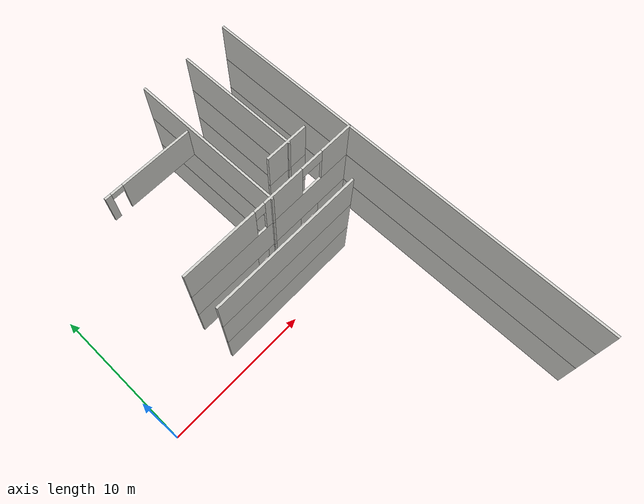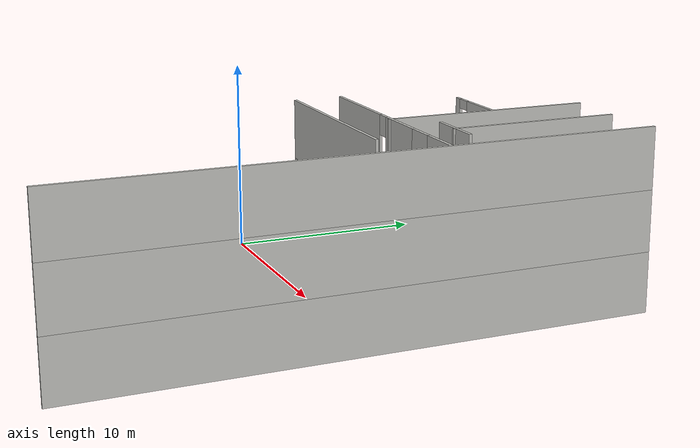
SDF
<sdf version="1.6">
 <model name="add_competition_building">
  <link name="Wall_238">
   <pose>18.3 -0.0635 0 0 0 -1.5708</pose>
   <visual name="Wall_238_Visual">
    <pose>0 0 1.5 0 -0 0</pose>
    <geometry><box><size>28.25 0.15 3</size></box></geometry>
    <material>
     <script><uri>file://media/materials/scripts/gazebo.material</uri><name>Gazebo/CeilingTiled</name></script>
     <ambient>1 1 1 1</ambient>
     <shader type="pixel"/>
    </material>
    <meta><layer>0</layer></meta>
   </visual>
   <collision name="Wall_238_Collision">
    <pose>0 0 1.5 0 -0 0</pose>
    <geometry><box><size>28.25 0.15 3</size></box></geometry>
    <surface>
     <friction>
      <ode><mu>1</mu><mu2>1</mu2><fdir1>0 0 0</fdir1><slip1>0</slip1><slip2>0</slip2></ode>
      <torsional>
       <coefficient>1</coefficient>
       <patch_radius>0</patch_radius>
       <surface_radius>0</surface_radius>
       <use_patch_radius>1</use_patch_radius>
       <ode><slip>0</slip></ode>
      </torsional>
     </friction>
     <bounce><restitution_coefficient>0</restitution_coefficient><threshold>1e+06</threshold></bounce>
     <contact>
      <collide_without_contact>0</collide_without_contact>
      <collide_without_contact_bitmask>1</collide_without_contact_bitmask>
      <collide_bitmask>1</collide_bitmask>
      <ode>
       <soft_cfm>0</soft_cfm>
       <soft_erp>0.2</soft_erp>
       <kp>1e+13</kp>
       <kd>1</kd>
       <max_vel>0.01</max_vel>
       <min_depth>0</min_depth>
      </ode>
      <bullet>
       <split_impulse>1</split_impulse>
       <split_impulse_penetration_threshold>-0.01</split_impulse_penetration_threshold>
       <soft_cfm>0</soft_cfm>
       <soft_erp>0.2</soft_erp>
       <kp>1e+13</kp>
       <kd>1</kd>
      </bullet>
     </contact>
    </surface>
   </collision>
  </link>
  <link name="Wall_262">
   <pose>11.965 3.6935 0 0 -0 0</pose>
   <visual name="Wall_262_Visual_4">
    <pose>3.07679 0 2.5 0 -0 0</pose>
    <geometry><box><size>1.53841 0.15 1</size></box></geometry>
    <material>
     <script><uri>file://media/materials/scripts/gazebo.material</uri><name>Gazebo/CeilingTiled</name></script>
     <ambient>1 1 1 1</ambient>
     <shader type="pixel"/>
    </material>
    <meta><layer>0</layer></meta>
   </visual>
   <visual name="Wall_262_Visual_1">
    <pose>0.882268 0 1.5 0 -0 0</pose>
    <geometry><box><size>2.85063 0.15 3</size></box></geometry>
    <material>
     <script><uri>file://media/materials/scripts/gazebo.material</uri><name>Gazebo/CeilingTiled</name></script>
     <ambient>1 1 1 1</ambient>
     <shader type="pixel"/>
    </material>
    <meta><layer>0</layer></meta>
   </visual>
   <visual name="Wall_262_Visual_3">
    <pose>-0.993046 0 2.5 0 -0 0</pose>
    <geometry><box><size>0.9 0.15 1</size></box></geometry>
    <material>
     <script><uri>file://media/materials/scripts/gazebo.material</uri><name>Gazebo/CeilingTiled</name></script>
     <ambient>1 1 1 1</ambient>
     <shader type="pixel"/>
    </material>
    <meta><layer>0</layer></meta>
   </visual>
   <visual name="Wall_262_Visual_2">
    <pose>5.11049 0 1.5 0 -0 0</pose>
    <geometry><box><size>2.52901 0.15 3</size></box></geometry>
    <material>
     <script><uri>file://media/materials/scripts/gazebo.material</uri><name>Gazebo/CeilingTiled</name></script>
     <ambient>1 1 1 1</ambient>
     <shader type="pixel"/>
    </material>
    <meta><layer>0</layer></meta>
   </visual>
   <visual name="Wall_262_Visual_0">
    <pose>-3.90902 0 1.5 0 -0 0</pose>
    <geometry><box><size>4.93195 0.15 3</size></box></geometry>
    <material>
     <script><uri>file://media/materials/scripts/gazebo.material</uri><name>Gazebo/CeilingTiled</name></script>
     <ambient>1 1 1 1</ambient>
     <shader type="pixel"/>
    </material>
    <meta><layer>0</layer></meta>
   </visual>
   <collision name="Wall_262_Collision_0">
    <pose>-3.90902 0 1.5 0 -0 0</pose>
    <geometry><box><size>4.93195 0.15 3</size></box></geometry>
    <surface>
     <friction>
      <ode><mu>1</mu><mu2>1</mu2><fdir1>0 0 0</fdir1><slip1>0</slip1><slip2>0</slip2></ode>
      <torsional>
       <coefficient>1</coefficient>
       <patch_radius>0</patch_radius>
       <surface_radius>0</surface_radius>
       <use_patch_radius>1</use_patch_radius>
       <ode><slip>0</slip></ode>
      </torsional>
     </friction>
     <bounce><restitution_coefficient>0</restitution_coefficient><threshold>1e+06</threshold></bounce>
     <contact>
      <collide_without_contact>0</collide_without_contact>
      <collide_without_contact_bitmask>1</collide_without_contact_bitmask>
      <collide_bitmask>1</collide_bitmask>
      <ode>
       <soft_cfm>0</soft_cfm>
       <soft_erp>0.2</soft_erp>
       <kp>1e+13</kp>
       <kd>1</kd>
       <max_vel>0.01</max_vel>
       <min_depth>0</min_depth>
      </ode>
      <bullet>
       <split_impulse>1</split_impulse>
       <split_impulse_penetration_threshold>-0.01</split_impulse_penetration_threshold>
       <soft_cfm>0</soft_cfm>
       <soft_erp>0.2</soft_erp>
       <kp>1e+13</kp>
       <kd>1</kd>
      </bullet>
     </contact>
    </surface>
   </collision>
   <collision name="Wall_262_Collision_2">
    <pose>5.11049 0 1.5 0 -0 0</pose>
    <geometry><box><size>2.52901 0.15 3</size></box></geometry>
    <surface>
     <friction>
      <ode><mu>1</mu><mu2>1</mu2><fdir1>0 0 0</fdir1><slip1>0</slip1><slip2>0</slip2></ode>
      <torsional>
       <coefficient>1</coefficient>
       <patch_radius>0</patch_radius>
       <surface_radius>0</surface_radius>
       <use_patch_radius>1</use_patch_radius>
       <ode><slip>0</slip></ode>
      </torsional>
     </friction>
     <bounce><restitution_coefficient>0</restitution_coefficient><threshold>1e+06</threshold></bounce>
     <contact>
      <collide_without_contact>0</collide_without_contact>
      <collide_without_contact_bitmask>1</collide_without_contact_bitmask>
      <collide_bitmask>1</collide_bitmask>
      <ode>
       <soft_cfm>0</soft_cfm>
       <soft_erp>0.2</soft_erp>
       <kp>1e+13</kp>
       <kd>1</kd>
       <max_vel>0.01</max_vel>
       <min_depth>0</min_depth>
      </ode>
      <bullet>
       <split_impulse>1</split_impulse>
       <split_impulse_penetration_threshold>-0.01</split_impulse_penetration_threshold>
       <soft_cfm>0</soft_cfm>
       <soft_erp>0.2</soft_erp>
       <kp>1e+13</kp>
       <kd>1</kd>
      </bullet>
     </contact>
    </surface>
   </collision>
   <collision name="Wall_262_Collision_4">
    <pose>3.07679 0 2.5 0 -0 0</pose>
    <geometry><box><size>1.53841 0.15 1</size></box></geometry>
    <surface>
     <friction>
      <ode><mu>1</mu><mu2>1</mu2><fdir1>0 0 0</fdir1><slip1>0</slip1><slip2>0</slip2></ode>
      <torsional>
       <coefficient>1</coefficient>
       <patch_radius>0</patch_radius>
       <surface_radius>0</surface_radius>
       <use_patch_radius>1</use_patch_radius>
       <ode><slip>0</slip></ode>
      </torsional>
     </friction>
     <bounce><restitution_coefficient>0</restitution_coefficient><threshold>1e+06</threshold></bounce>
     <contact>
      <collide_without_contact>0</collide_without_contact>
      <collide_without_contact_bitmask>1</collide_without_contact_bitmask>
      <collide_bitmask>1</collide_bitmask>
      <ode>
       <soft_cfm>0</soft_cfm>
       <soft_erp>0.2</soft_erp>
       <kp>1e+13</kp>
       <kd>1</kd>
       <max_vel>0.01</max_vel>
       <min_depth>0</min_depth>
      </ode>
      <bullet>
       <split_impulse>1</split_impulse>
       <split_impulse_penetration_threshold>-0.01</split_impulse_penetration_threshold>
       <soft_cfm>0</soft_cfm>
       <soft_erp>0.2</soft_erp>
       <kp>1e+13</kp>
       <kd>1</kd>
      </bullet>
     </contact>
    </surface>
   </collision>
   <collision name="Wall_262_Collision_3">
    <pose>-0.993046 0 2.5 0 -0 0</pose>
    <geometry><box><size>0.9 0.15 1</size></box></geometry>
    <surface>
     <friction>
      <ode><mu>1</mu><mu2>1</mu2><fdir1>0 0 0</fdir1><slip1>0</slip1><slip2>0</slip2></ode>
      <torsional>
       <coefficient>1</coefficient>
       <patch_radius>0</patch_radius>
       <surface_radius>0</surface_radius>
       <use_patch_radius>1</use_patch_radius>
       <ode><slip>0</slip></ode>
      </torsional>
     </friction>
     <bounce><restitution_coefficient>0</restitution_coefficient><threshold>1e+06</threshold></bounce>
     <contact>
      <collide_without_contact>0</collide_without_contact>
      <collide_without_contact_bitmask>1</collide_without_contact_bitmask>
      <collide_bitmask>1</collide_bitmask>
      <ode>
       <soft_cfm>0</soft_cfm>
       <soft_erp>0.2</soft_erp>
       <kp>1e+13</kp>
       <kd>1</kd>
       <max_vel>0.01</max_vel>
       <min_depth>0</min_depth>
      </ode>
      <bullet>
       <split_impulse>1</split_impulse>
       <split_impulse_penetration_threshold>-0.01</split_impulse_penetration_threshold>
       <soft_cfm>0</soft_cfm>
       <soft_erp>0.2</soft_erp>
       <kp>1e+13</kp>
       <kd>1</kd>
      </bullet>
     </contact>
    </surface>
   </collision>
   <collision name="Wall_262_Collision_1">
    <pose>0.882268 0 1.5 0 -0 0</pose>
    <geometry><box><size>2.85063 0.15 3</size></box></geometry>
    <surface>
     <friction>
      <ode><mu>1</mu><mu2>1</mu2><fdir1>0 0 0</fdir1><slip1>0</slip1><slip2>0</slip2></ode>
      <torsional>
       <coefficient>1</coefficient>
       <patch_radius>0</patch_radius>
       <surface_radius>0</surface_radius>
       <use_patch_radius>1</use_patch_radius>
       <ode><slip>0</slip></ode>
      </torsional>
     </friction>
     <bounce><restitution_coefficient>0</restitution_coefficient><threshold>1e+06</threshold></bounce>
     <contact>
      <collide_without_contact>0</collide_without_contact>
      <collide_without_contact_bitmask>1</collide_without_contact_bitmask>
      <collide_bitmask>1</collide_bitmask>
      <ode>
       <soft_cfm>0</soft_cfm>
       <soft_erp>0.2</soft_erp>
       <kp>1e+13</kp>
       <kd>1</kd>
       <max_vel>0.01</max_vel>
       <min_depth>0</min_depth>
      </ode>
      <bullet>
       <split_impulse>1</split_impulse>
       <split_impulse_penetration_threshold>-0.01</split_impulse_penetration_threshold>
       <soft_cfm>0</soft_cfm>
       <soft_erp>0.2</soft_erp>
       <kp>1e+13</kp>
       <kd>1</kd>
      </bullet>
     </contact>
    </surface>
   </collision>
  </link>
  <link name="Wall_264">
   <pose>10.75 1.2365 0 0 -0 0</pose>
   <visual name="Wall_264_Visual">
    <pose>0 0 1.5 0 -0 0</pose>
    <geometry><box><size>10.25 0.15 3</size></box></geometry>
    <material>
     <script><uri>file://media/materials/scripts/gazebo.material</uri><name>Gazebo/CeilingTiled</name></script>
     <ambient>1 1 1 1</ambient>
     <shader type="pixel"/>
    </material>
    <meta><layer>0</layer></meta>
   </visual>
   <collision name="Wall_264_Collision">
    <pose>0 0 1.5 0 -0 0</pose>
    <geometry><box><size>10.25 0.15 3</size></box></geometry>
    <surface>
     <friction>
      <ode><mu>1</mu><mu2>1</mu2><fdir1>0 0 0</fdir1><slip1>0</slip1><slip2>0</slip2></ode>
      <torsional>
       <coefficient>1</coefficient>
       <patch_radius>0</patch_radius>
       <surface_radius>0</surface_radius>
       <use_patch_radius>1</use_patch_radius>
       <ode><slip>0</slip></ode>
      </torsional>
     </friction>
     <bounce><restitution_coefficient>0</restitution_coefficient><threshold>1e+06</threshold></bounce>
     <contact>
      <collide_without_contact>0</collide_without_contact>
      <collide_without_contact_bitmask>1</collide_without_contact_bitmask>
      <collide_bitmask>1</collide_bitmask>
      <ode>
       <soft_cfm>0</soft_cfm>
       <soft_erp>0.2</soft_erp>
       <kp>1e+13</kp>
       <kd>1</kd>
       <max_vel>0.01</max_vel>
       <min_depth>0</min_depth>
      </ode>
      <bullet>
       <split_impulse>1</split_impulse>
       <split_impulse_penetration_threshold>-0.01</split_impulse_penetration_threshold>
       <soft_cfm>0</soft_cfm>
       <soft_erp>0.2</soft_erp>
       <kp>1e+13</kp>
       <kd>1</kd>
      </bullet>
     </contact>
    </surface>
   </collision>
  </link>
  <link name="Wall_269">
   <pose>11.969 8.7785 0 0 0 -1.5708</pose>
   <visual name="Wall_269_Visual">
    <pose>0 0 1.5 0 -0 0</pose>
    <geometry><box><size>10.5 0.15 3</size></box></geometry>
    <material>
     <script><uri>file://media/materials/scripts/gazebo.material</uri><name>Gazebo/CeilingTiled</name></script>
     <ambient>1 1 1 1</ambient>
     <shader type="pixel"/>
    </material>
    <meta><layer>0</layer></meta>
   </visual>
   <collision name="Wall_269_Collision">
    <pose>0 0 1.5 0 -0 0</pose>
    <geometry><box><size>10.5 0.15 3</size></box></geometry>
    <surface>
     <friction>
      <ode><mu>1</mu><mu2>1</mu2><fdir1>0 0 0</fdir1><slip1>0</slip1><slip2>0</slip2></ode>
      <torsional>
       <coefficient>1</coefficient>
       <patch_radius>0</patch_radius>
       <surface_radius>0</surface_radius>
       <use_patch_radius>1</use_patch_radius>
       <ode><slip>0</slip></ode>
      </torsional>
     </friction>
     <bounce><restitution_coefficient>0</restitution_coefficient><threshold>1e+06</threshold></bounce>
     <contact>
      <collide_without_contact>0</collide_without_contact>
      <collide_without_contact_bitmask>1</collide_without_contact_bitmask>
      <collide_bitmask>1</collide_bitmask>
      <ode>
       <soft_cfm>0</soft_cfm>
       <soft_erp>0.2</soft_erp>
       <kp>1e+13</kp>
       <kd>1</kd>
       <max_vel>0.01</max_vel>
       <min_depth>0</min_depth>
      </ode>
      <bullet>
       <split_impulse>1</split_impulse>
       <split_impulse_penetration_threshold>-0.01</split_impulse_penetration_threshold>
       <soft_cfm>0</soft_cfm>
       <soft_erp>0.2</soft_erp>
       <kp>1e+13</kp>
       <kd>1</kd>
      </bullet>
     </contact>
    </surface>
   </collision>
  </link>
  <link name="Wall_271">
   <pose>15.03 5.4945 0 0 -0 0</pose>
   <visual name="Wall_271_Visual">
    <pose>0 0 1.5 0 -0 0</pose>
    <geometry><box><size>3 0.15 3</size></box></geometry>
    <material>
     <script><uri>file://media/materials/scripts/gazebo.material</uri><name>Gazebo/CeilingTiled</name></script>
     <ambient>1 1 1 1</ambient>
     <shader type="pixel"/>
    </material>
    <meta><layer>0</layer></meta>
   </visual>
   <collision name="Wall_271_Collision">
    <pose>0 0 1.5 0 -0 0</pose>
    <geometry><box><size>3 0.15 3</size></box></geometry>
    <surface>
     <friction>
      <ode><mu>1</mu><mu2>1</mu2><fdir1>0 0 0</fdir1><slip1>0</slip1><slip2>0</slip2></ode>
      <torsional>
       <coefficient>1</coefficient>
       <patch_radius>0</patch_radius>
       <surface_radius>0</surface_radius>
       <use_patch_radius>1</use_patch_radius>
       <ode><slip>0</slip></ode>
      </torsional>
     </friction>
     <bounce><restitution_coefficient>0</restitution_coefficient><threshold>1e+06</threshold></bounce>
     <contact>
      <collide_without_contact>0</collide_without_contact>
      <collide_without_contact_bitmask>1</collide_without_contact_bitmask>
      <collide_bitmask>1</collide_bitmask>
      <ode>
       <soft_cfm>0</soft_cfm>
       <soft_erp>0.2</soft_erp>
       <kp>1e+13</kp>
       <kd>1</kd>
       <max_vel>0.01</max_vel>
       <min_depth>0</min_depth>
      </ode>
      <bullet>
       <split_impulse>1</split_impulse>
       <split_impulse_penetration_threshold>-0.01</split_impulse_penetration_threshold>
       <soft_cfm>0</soft_cfm>
       <soft_erp>0.2</soft_erp>
       <kp>1e+13</kp>
       <kd>1</kd>
      </bullet>
     </contact>
    </surface>
   </collision>
  </link>
  <link name="Wall_273">
   <pose>15.122 9.5895 0 0 -0 1.5708</pose>
   <visual name="Wall_273_Visual">
    <pose>0 0 1.5 0 -0 0</pose>
    <geometry><box><size>8.5 0.15 3</size></box></geometry>
    <material>
     <script><uri>file://media/materials/scripts/gazebo.material</uri><name>Gazebo/CeilingTiled</name></script>
     <ambient>1 1 1 1</ambient>
     <shader type="pixel"/>
    </material>
    <meta><layer>0</layer></meta>
   </visual>
   <collision name="Wall_273_Collision">
    <pose>0 0 1.5 0 -0 0</pose>
    <geometry><box><size>8.5 0.15 3</size></box></geometry>
    <surface>
     <friction>
      <ode><mu>1</mu><mu2>1</mu2><fdir1>0 0 0</fdir1><slip1>0</slip1><slip2>0</slip2></ode>
      <torsional>
       <coefficient>1</coefficient>
       <patch_radius>0</patch_radius>
       <surface_radius>0</surface_radius>
       <use_patch_radius>1</use_patch_radius>
       <ode><slip>0</slip></ode>
      </torsional>
     </friction>
     <bounce><restitution_coefficient>0</restitution_coefficient><threshold>1e+06</threshold></bounce>
     <contact>
      <collide_without_contact>0</collide_without_contact>
      <collide_without_contact_bitmask>1</collide_without_contact_bitmask>
      <collide_bitmask>1</collide_bitmask>
      <ode>
       <soft_cfm>0</soft_cfm>
       <soft_erp>0.2</soft_erp>
       <kp>1e+13</kp>
       <kd>1</kd>
       <max_vel>0.01</max_vel>
       <min_depth>0</min_depth>
      </ode>
      <bullet>
       <split_impulse>1</split_impulse>
       <split_impulse_penetration_threshold>-0.01</split_impulse_penetration_threshold>
       <soft_cfm>0</soft_cfm>
       <soft_erp>0.2</soft_erp>
       <kp>1e+13</kp>
       <kd>1</kd>
      </bullet>
     </contact>
    </surface>
   </collision>
  </link>
  <link name="Wall_278">
   <pose>18.3 -0.0635 3 0 0 -1.5708</pose>
   <visual name="Wall_278_Visual">
    <pose>0 0 1.5 0 -0 0</pose>
    <geometry><box><size>28.25 0.15 3</size></box></geometry>
    <material>
     <script><uri>file://media/materials/scripts/gazebo.material</uri><name>Gazebo/CeilingTiled</name></script>
     <ambient>1 1 1 1</ambient>
     <shader type="pixel"/>
    </material>
    <meta><layer>1</layer></meta>
   </visual>
   <collision name="Wall_278_Collision">
    <pose>0 0 1.5 0 -0 0</pose>
    <geometry><box><size>28.25 0.15 3</size></box></geometry>
    <surface>
     <friction>
      <ode><mu>1</mu><mu2>1</mu2><fdir1>0 0 0</fdir1><slip1>0</slip1><slip2>0</slip2></ode>
      <torsional>
       <coefficient>1</coefficient>
       <patch_radius>0</patch_radius>
       <surface_radius>0</surface_radius>
       <use_patch_radius>1</use_patch_radius>
       <ode><slip>0</slip></ode>
      </torsional>
     </friction>
     <bounce><restitution_coefficient>0</restitution_coefficient><threshold>1e+06</threshold></bounce>
     <contact>
      <collide_without_contact>0</collide_without_contact>
      <collide_without_contact_bitmask>1</collide_without_contact_bitmask>
      <collide_bitmask>1</collide_bitmask>
      <ode>
       <soft_cfm>0</soft_cfm>
       <soft_erp>0.2</soft_erp>
       <kp>1e+13</kp>
       <kd>1</kd>
       <max_vel>0.01</max_vel>
       <min_depth>0</min_depth>
      </ode>
      <bullet>
       <split_impulse>1</split_impulse>
       <split_impulse_penetration_threshold>-0.01</split_impulse_penetration_threshold>
       <soft_cfm>0</soft_cfm>
       <soft_erp>0.2</soft_erp>
       <kp>1e+13</kp>
       <kd>1</kd>
      </bullet>
     </contact>
    </surface>
   </collision>
  </link>
  <link name="Wall_294">
   <pose>11.965 3.6935 3 0 -0 0</pose>
   <visual name="Wall_294_Visual">
    <pose>0 0 1.5 0 -0 0</pose>
    <geometry><box><size>12.75 0.15 3</size></box></geometry>
    <material>
     <script><uri>file://media/materials/scripts/gazebo.material</uri><name>Gazebo/CeilingTiled</name></script>
     <ambient>1 1 1 1</ambient>
     <shader type="pixel"/>
    </material>
    <meta><layer>1</layer></meta>
   </visual>
   <collision name="Wall_294_Collision">
    <pose>0 0 1.5 0 -0 0</pose>
    <geometry><box><size>12.75 0.15 3</size></box></geometry>
    <surface>
     <friction>
      <ode><mu>1</mu><mu2>1</mu2><fdir1>0 0 0</fdir1><slip1>0</slip1><slip2>0</slip2></ode>
      <torsional>
       <coefficient>1</coefficient>
       <patch_radius>0</patch_radius>
       <surface_radius>0</surface_radius>
       <use_patch_radius>1</use_patch_radius>
       <ode><slip>0</slip></ode>
      </torsional>
     </friction>
     <bounce><restitution_coefficient>0</restitution_coefficient><threshold>1e+06</threshold></bounce>
     <contact>
      <collide_without_contact>0</collide_without_contact>
      <collide_without_contact_bitmask>1</collide_without_contact_bitmask>
      <collide_bitmask>1</collide_bitmask>
      <ode>
       <soft_cfm>0</soft_cfm>
       <soft_erp>0.2</soft_erp>
       <kp>1e+13</kp>
       <kd>1</kd>
       <max_vel>0.01</max_vel>
       <min_depth>0</min_depth>
      </ode>
      <bullet>
       <split_impulse>1</split_impulse>
       <split_impulse_penetration_threshold>-0.01</split_impulse_penetration_threshold>
       <soft_cfm>0</soft_cfm>
       <soft_erp>0.2</soft_erp>
       <kp>1e+13</kp>
       <kd>1</kd>
      </bullet>
     </contact>
    </surface>
   </collision>
  </link>
  <link name="Wall_295">
   <pose>10.75 1.2365 3 0 -0 0</pose>
   <visual name="Wall_295_Visual">
    <pose>0 0 1.5 0 -0 0</pose>
    <geometry><box><size>10.25 0.15 3</size></box></geometry>
    <material>
     <script><uri>file://media/materials/scripts/gazebo.material</uri><name>Gazebo/CeilingTiled</name></script>
     <ambient>1 1 1 1</ambient>
     <shader type="pixel"/>
    </material>
    <meta><layer>1</layer></meta>
   </visual>
   <collision name="Wall_295_Collision">
    <pose>0 0 1.5 0 -0 0</pose>
    <geometry><box><size>10.25 0.15 3</size></box></geometry>
    <surface>
     <friction>
      <ode><mu>1</mu><mu2>1</mu2><fdir1>0 0 0</fdir1><slip1>0</slip1><slip2>0</slip2></ode>
      <torsional>
       <coefficient>1</coefficient>
       <patch_radius>0</patch_radius>
       <surface_radius>0</surface_radius>
       <use_patch_radius>1</use_patch_radius>
       <ode><slip>0</slip></ode>
      </torsional>
     </friction>
     <bounce><restitution_coefficient>0</restitution_coefficient><threshold>1e+06</threshold></bounce>
     <contact>
      <collide_without_contact>0</collide_without_contact>
      <collide_without_contact_bitmask>1</collide_without_contact_bitmask>
      <collide_bitmask>1</collide_bitmask>
      <ode>
       <soft_cfm>0</soft_cfm>
       <soft_erp>0.2</soft_erp>
       <kp>1e+13</kp>
       <kd>1</kd>
       <max_vel>0.01</max_vel>
       <min_depth>0</min_depth>
      </ode>
      <bullet>
       <split_impulse>1</split_impulse>
       <split_impulse_penetration_threshold>-0.01</split_impulse_penetration_threshold>
       <soft_cfm>0</soft_cfm>
       <soft_erp>0.2</soft_erp>
       <kp>1e+13</kp>
       <kd>1</kd>
      </bullet>
     </contact>
    </surface>
   </collision>
  </link>
  <link name="Wall_298">
   <pose>11.969 8.7785 3 0 0 -1.5708</pose>
   <visual name="Wall_298_Visual">
    <pose>0 0 1.5 0 -0 0</pose>
    <geometry><box><size>10.5 0.15 3</size></box></geometry>
    <material>
     <script><uri>file://media/materials/scripts/gazebo.material</uri><name>Gazebo/CeilingTiled</name></script>
     <ambient>1 1 1 1</ambient>
     <shader type="pixel"/>
    </material>
    <meta><layer>1</layer></meta>
   </visual>
   <collision name="Wall_298_Collision">
    <pose>0 0 1.5 0 -0 0</pose>
    <geometry><box><size>10.5 0.15 3</size></box></geometry>
    <surface>
     <friction>
      <ode><mu>1</mu><mu2>1</mu2><fdir1>0 0 0</fdir1><slip1>0</slip1><slip2>0</slip2></ode>
      <torsional>
       <coefficient>1</coefficient>
       <patch_radius>0</patch_radius>
       <surface_radius>0</surface_radius>
       <use_patch_radius>1</use_patch_radius>
       <ode><slip>0</slip></ode>
      </torsional>
     </friction>
     <bounce><restitution_coefficient>0</restitution_coefficient><threshold>1e+06</threshold></bounce>
     <contact>
      <collide_without_contact>0</collide_without_contact>
      <collide_without_contact_bitmask>1</collide_without_contact_bitmask>
      <collide_bitmask>1</collide_bitmask>
      <ode>
       <soft_cfm>0</soft_cfm>
       <soft_erp>0.2</soft_erp>
       <kp>1e+13</kp>
       <kd>1</kd>
       <max_vel>0.01</max_vel>
       <min_depth>0</min_depth>
      </ode>
      <bullet>
       <split_impulse>1</split_impulse>
       <split_impulse_penetration_threshold>-0.01</split_impulse_penetration_threshold>
       <soft_cfm>0</soft_cfm>
       <soft_erp>0.2</soft_erp>
       <kp>1e+13</kp>
       <kd>1</kd>
      </bullet>
     </contact>
    </surface>
   </collision>
  </link>
  <link name="Wall_299">
   <pose>15.03 5.4945 3 0 -0 0</pose>
   <visual name="Wall_299_Visual">
    <pose>0 0 1.5 0 -0 0</pose>
    <geometry><box><size>3 0.15 3</size></box></geometry>
    <material>
     <script><uri>file://media/materials/scripts/gazebo.material</uri><name>Gazebo/CeilingTiled</name></script>
     <ambient>1 1 1 1</ambient>
     <shader type="pixel"/>
    </material>
    <meta><layer>1</layer></meta>
   </visual>
   <collision name="Wall_299_Collision">
    <pose>0 0 1.5 0 -0 0</pose>
    <geometry><box><size>3 0.15 3</size></box></geometry>
    <surface>
     <friction>
      <ode><mu>1</mu><mu2>1</mu2><fdir1>0 0 0</fdir1><slip1>0</slip1><slip2>0</slip2></ode>
      <torsional>
       <coefficient>1</coefficient>
       <patch_radius>0</patch_radius>
       <surface_radius>0</surface_radius>
       <use_patch_radius>1</use_patch_radius>
       <ode><slip>0</slip></ode>
      </torsional>
     </friction>
     <bounce><restitution_coefficient>0</restitution_coefficient><threshold>1e+06</threshold></bounce>
     <contact>
      <collide_without_contact>0</collide_without_contact>
      <collide_without_contact_bitmask>1</collide_without_contact_bitmask>
      <collide_bitmask>1</collide_bitmask>
      <ode>
       <soft_cfm>0</soft_cfm>
       <soft_erp>0.2</soft_erp>
       <kp>1e+13</kp>
       <kd>1</kd>
       <max_vel>0.01</max_vel>
       <min_depth>0</min_depth>
      </ode>
      <bullet>
       <split_impulse>1</split_impulse>
       <split_impulse_penetration_threshold>-0.01</split_impulse_penetration_threshold>
       <soft_cfm>0</soft_cfm>
       <soft_erp>0.2</soft_erp>
       <kp>1e+13</kp>
       <kd>1</kd>
      </bullet>
     </contact>
    </surface>
   </collision>
  </link>
  <link name="Wall_300">
   <pose>15.122 9.5895 3 0 -0 1.5708</pose>
   <visual name="Wall_300_Visual">
    <pose>0 0 1.5 0 -0 0</pose>
    <geometry><box><size>8.5 0.15 3</size></box></geometry>
    <material>
     <script><uri>file://media/materials/scripts/gazebo.material</uri><name>Gazebo/CeilingTiled</name></script>
     <ambient>1 1 1 1</ambient>
     <shader type="pixel"/>
    </material>
    <meta><layer>1</layer></meta>
   </visual>
   <collision name="Wall_300_Collision">
    <pose>0 0 1.5 0 -0 0</pose>
    <geometry><box><size>8.5 0.15 3</size></box></geometry>
    <surface>
     <friction>
      <ode><mu>1</mu><mu2>1</mu2><fdir1>0 0 0</fdir1><slip1>0</slip1><slip2>0</slip2></ode>
      <torsional>
       <coefficient>1</coefficient>
       <patch_radius>0</patch_radius>
       <surface_radius>0</surface_radius>
       <use_patch_radius>1</use_patch_radius>
       <ode><slip>0</slip></ode>
      </torsional>
     </friction>
     <bounce><restitution_coefficient>0</restitution_coefficient><threshold>1e+06</threshold></bounce>
     <contact>
      <collide_without_contact>0</collide_without_contact>
      <collide_without_contact_bitmask>1</collide_without_contact_bitmask>
      <collide_bitmask>1</collide_bitmask>
      <ode>
       <soft_cfm>0</soft_cfm>
       <soft_erp>0.2</soft_erp>
       <kp>1e+13</kp>
       <kd>1</kd>
       <max_vel>0.01</max_vel>
       <min_depth>0</min_depth>
      </ode>
      <bullet>
       <split_impulse>1</split_impulse>
       <split_impulse_penetration_threshold>-0.01</split_impulse_penetration_threshold>
       <soft_cfm>0</soft_cfm>
       <soft_erp>0.2</soft_erp>
       <kp>1e+13</kp>
       <kd>1</kd>
      </bullet>
     </contact>
    </surface>
   </collision>
  </link>
  <link name="Wall_333">
   <pose>18.3 -0.0635 6 0 0 -1.5708</pose>
   <visual name="Wall_333_Visual">
    <pose>0 0 1.5 0 -0 0</pose>
    <geometry><box><size>28.25 0.15 3</size></box></geometry>
    <material>
     <script><uri>file://media/materials/scripts/gazebo.material</uri><name>Gazebo/CeilingTiled</name></script>
     <ambient>1 1 1 1</ambient>
     <shader type="pixel"/>
    </material>
    <meta><layer>2</layer></meta>
   </visual>
   <collision name="Wall_333_Collision">
    <pose>0 0 1.5 0 -0 0</pose>
    <geometry><box><size>28.25 0.15 3</size></box></geometry>
    <surface>
     <friction>
      <ode><mu>1</mu><mu2>1</mu2><fdir1>0 0 0</fdir1><slip1>0</slip1><slip2>0</slip2></ode>
      <torsional>
       <coefficient>1</coefficient>
       <patch_radius>0</patch_radius>
       <surface_radius>0</surface_radius>
       <use_patch_radius>1</use_patch_radius>
       <ode><slip>0</slip></ode>
      </torsional>
     </friction>
     <bounce><restitution_coefficient>0</restitution_coefficient><threshold>1e+06</threshold></bounce>
     <contact>
      <collide_without_contact>0</collide_without_contact>
      <collide_without_contact_bitmask>1</collide_without_contact_bitmask>
      <collide_bitmask>1</collide_bitmask>
      <ode>
       <soft_cfm>0</soft_cfm>
       <soft_erp>0.2</soft_erp>
       <kp>1e+13</kp>
       <kd>1</kd>
       <max_vel>0.01</max_vel>
       <min_depth>0</min_depth>
      </ode>
      <bullet>
       <split_impulse>1</split_impulse>
       <split_impulse_penetration_threshold>-0.01</split_impulse_penetration_threshold>
       <soft_cfm>0</soft_cfm>
       <soft_erp>0.2</soft_erp>
       <kp>1e+13</kp>
       <kd>1</kd>
      </bullet>
     </contact>
    </surface>
   </collision>
  </link>
  <link name="Wall_349">
   <pose>11.965 3.6935 6 0 -0 0</pose>
   <visual name="Wall_349_Visual_2">
    <pose>5.19738 0 1.5 0 -0 0</pose>
    <geometry><box><size>2.35524 0.15 3</size></box></geometry>
    <material>
     <script><uri>file://media/materials/scripts/gazebo.material</uri><name>Gazebo/CeilingTiled</name></script>
     <ambient>1 1 1 1</ambient>
     <shader type="pixel"/>
    </material>
    <meta><layer>2</layer></meta>
   </visual>
   <visual name="Wall_349_Visual_4">
    <pose>3.22281 0 2.5 0 -0 0</pose>
    <geometry><box><size>1.59392 0.15 1</size></box></geometry>
    <material>
     <script><uri>file://media/materials/scripts/gazebo.material</uri><name>Gazebo/CeilingTiled</name></script>
     <ambient>1 1 1 1</ambient>
     <shader type="pixel"/>
    </material>
    <meta><layer>2</layer></meta>
   </visual>
   <visual name="Wall_349_Visual_1">
    <pose>0.962302 0 1.5 0 -0 0</pose>
    <geometry><box><size>2.92709 0.15 3</size></box></geometry>
    <material>
     <script><uri>file://media/materials/scripts/gazebo.material</uri><name>Gazebo/CeilingTiled</name></script>
     <ambient>1 1 1 1</ambient>
     <shader type="pixel"/>
    </material>
    <meta><layer>2</layer></meta>
   </visual>
   <visual name="Wall_349_Visual_0">
    <pose>-3.80312 0 1.5 0 -0 0</pose>
    <geometry><box><size>5.14376 0.15 3</size></box></geometry>
    <material>
     <script><uri>file://media/materials/scripts/gazebo.material</uri><name>Gazebo/CeilingTiled</name></script>
     <ambient>1 1 1 1</ambient>
     <shader type="pixel"/>
    </material>
    <meta><layer>2</layer></meta>
   </visual>
   <visual name="Wall_349_Visual_3">
    <pose>-0.866241 0 2.5 0 -0 0</pose>
    <geometry><box><size>0.73 0.15 1</size></box></geometry>
    <material>
     <script><uri>file://media/materials/scripts/gazebo.material</uri><name>Gazebo/CeilingTiled</name></script>
     <ambient>1 1 1 1</ambient>
     <shader type="pixel"/>
    </material>
    <meta><layer>2</layer></meta>
   </visual>
   <collision name="Wall_349_Collision_1">
    <pose>0.962302 0 1.5 0 -0 0</pose>
    <geometry><box><size>2.92709 0.15 3</size></box></geometry>
    <surface>
     <friction>
      <ode><mu>1</mu><mu2>1</mu2><fdir1>0 0 0</fdir1><slip1>0</slip1><slip2>0</slip2></ode>
      <torsional>
       <coefficient>1</coefficient>
       <patch_radius>0</patch_radius>
       <surface_radius>0</surface_radius>
       <use_patch_radius>1</use_patch_radius>
       <ode><slip>0</slip></ode>
      </torsional>
     </friction>
     <bounce><restitution_coefficient>0</restitution_coefficient><threshold>1e+06</threshold></bounce>
     <contact>
      <collide_without_contact>0</collide_without_contact>
      <collide_without_contact_bitmask>1</collide_without_contact_bitmask>
      <collide_bitmask>1</collide_bitmask>
      <ode>
       <soft_cfm>0</soft_cfm>
       <soft_erp>0.2</soft_erp>
       <kp>1e+13</kp>
       <kd>1</kd>
       <max_vel>0.01</max_vel>
       <min_depth>0</min_depth>
      </ode>
      <bullet>
       <split_impulse>1</split_impulse>
       <split_impulse_penetration_threshold>-0.01</split_impulse_penetration_threshold>
       <soft_cfm>0</soft_cfm>
       <soft_erp>0.2</soft_erp>
       <kp>1e+13</kp>
       <kd>1</kd>
      </bullet>
     </contact>
    </surface>
   </collision>
   <collision name="Wall_349_Collision_3">
    <pose>-0.866241 0 2.5 0 -0 0</pose>
    <geometry><box><size>0.73 0.15 1</size></box></geometry>
    <surface>
     <friction>
      <ode><mu>1</mu><mu2>1</mu2><fdir1>0 0 0</fdir1><slip1>0</slip1><slip2>0</slip2></ode>
      <torsional>
       <coefficient>1</coefficient>
       <patch_radius>0</patch_radius>
       <surface_radius>0</surface_radius>
       <use_patch_radius>1</use_patch_radius>
       <ode><slip>0</slip></ode>
      </torsional>
     </friction>
     <bounce><restitution_coefficient>0</restitution_coefficient><threshold>1e+06</threshold></bounce>
     <contact>
      <collide_without_contact>0</collide_without_contact>
      <collide_without_contact_bitmask>1</collide_without_contact_bitmask>
      <collide_bitmask>1</collide_bitmask>
      <ode>
       <soft_cfm>0</soft_cfm>
       <soft_erp>0.2</soft_erp>
       <kp>1e+13</kp>
       <kd>1</kd>
       <max_vel>0.01</max_vel>
       <min_depth>0</min_depth>
      </ode>
      <bullet>
       <split_impulse>1</split_impulse>
       <split_impulse_penetration_threshold>-0.01</split_impulse_penetration_threshold>
       <soft_cfm>0</soft_cfm>
       <soft_erp>0.2</soft_erp>
       <kp>1e+13</kp>
       <kd>1</kd>
      </bullet>
     </contact>
    </surface>
   </collision>
   <collision name="Wall_349_Collision_0">
    <pose>-3.80312 0 1.5 0 -0 0</pose>
    <geometry><box><size>5.14376 0.15 3</size></box></geometry>
    <surface>
     <friction>
      <ode><mu>1</mu><mu2>1</mu2><fdir1>0 0 0</fdir1><slip1>0</slip1><slip2>0</slip2></ode>
      <torsional>
       <coefficient>1</coefficient>
       <patch_radius>0</patch_radius>
       <surface_radius>0</surface_radius>
       <use_patch_radius>1</use_patch_radius>
       <ode><slip>0</slip></ode>
      </torsional>
     </friction>
     <bounce><restitution_coefficient>0</restitution_coefficient><threshold>1e+06</threshold></bounce>
     <contact>
      <collide_without_contact>0</collide_without_contact>
      <collide_without_contact_bitmask>1</collide_without_contact_bitmask>
      <collide_bitmask>1</collide_bitmask>
      <ode>
       <soft_cfm>0</soft_cfm>
       <soft_erp>0.2</soft_erp>
       <kp>1e+13</kp>
       <kd>1</kd>
       <max_vel>0.01</max_vel>
       <min_depth>0</min_depth>
      </ode>
      <bullet>
       <split_impulse>1</split_impulse>
       <split_impulse_penetration_threshold>-0.01</split_impulse_penetration_threshold>
       <soft_cfm>0</soft_cfm>
       <soft_erp>0.2</soft_erp>
       <kp>1e+13</kp>
       <kd>1</kd>
      </bullet>
     </contact>
    </surface>
   </collision>
   <collision name="Wall_349_Collision_4">
    <pose>3.22281 0 2.5 0 -0 0</pose>
    <geometry><box><size>1.59392 0.15 1</size></box></geometry>
    <surface>
     <friction>
      <ode><mu>1</mu><mu2>1</mu2><fdir1>0 0 0</fdir1><slip1>0</slip1><slip2>0</slip2></ode>
      <torsional>
       <coefficient>1</coefficient>
       <patch_radius>0</patch_radius>
       <surface_radius>0</surface_radius>
       <use_patch_radius>1</use_patch_radius>
       <ode><slip>0</slip></ode>
      </torsional>
     </friction>
     <bounce><restitution_coefficient>0</restitution_coefficient><threshold>1e+06</threshold></bounce>
     <contact>
      <collide_without_contact>0</collide_without_contact>
      <collide_without_contact_bitmask>1</collide_without_contact_bitmask>
      <collide_bitmask>1</collide_bitmask>
      <ode>
       <soft_cfm>0</soft_cfm>
       <soft_erp>0.2</soft_erp>
       <kp>1e+13</kp>
       <kd>1</kd>
       <max_vel>0.01</max_vel>
       <min_depth>0</min_depth>
      </ode>
      <bullet>
       <split_impulse>1</split_impulse>
       <split_impulse_penetration_threshold>-0.01</split_impulse_penetration_threshold>
       <soft_cfm>0</soft_cfm>
       <soft_erp>0.2</soft_erp>
       <kp>1e+13</kp>
       <kd>1</kd>
      </bullet>
     </contact>
    </surface>
   </collision>
   <collision name="Wall_349_Collision_2">
    <pose>5.19738 0 1.5 0 -0 0</pose>
    <geometry><box><size>2.35524 0.15 3</size></box></geometry>
    <surface>
     <friction>
      <ode><mu>1</mu><mu2>1</mu2><fdir1>0 0 0</fdir1><slip1>0</slip1><slip2>0</slip2></ode>
      <torsional>
       <coefficient>1</coefficient>
       <patch_radius>0</patch_radius>
       <surface_radius>0</surface_radius>
       <use_patch_radius>1</use_patch_radius>
       <ode><slip>0</slip></ode>
      </torsional>
     </friction>
     <bounce><restitution_coefficient>0</restitution_coefficient><threshold>1e+06</threshold></bounce>
     <contact>
      <collide_without_contact>0</collide_without_contact>
      <collide_without_contact_bitmask>1</collide_without_contact_bitmask>
      <collide_bitmask>1</collide_bitmask>
      <ode>
       <soft_cfm>0</soft_cfm>
       <soft_erp>0.2</soft_erp>
       <kp>1e+13</kp>
       <kd>1</kd>
       <max_vel>0.01</max_vel>
       <min_depth>0</min_depth>
      </ode>
      <bullet>
       <split_impulse>1</split_impulse>
       <split_impulse_penetration_threshold>-0.01</split_impulse_penetration_threshold>
       <soft_cfm>0</soft_cfm>
       <soft_erp>0.2</soft_erp>
       <kp>1e+13</kp>
       <kd>1</kd>
      </bullet>
     </contact>
    </surface>
   </collision>
  </link>
  <link name="Wall_350">
   <pose>10.75 1.2365 6 0 -0 0</pose>
   <visual name="Wall_350_Visual">
    <pose>0 0 1.5 0 -0 0</pose>
    <geometry><box><size>10.25 0.15 3</size></box></geometry>
    <material>
     <script><uri>file://media/materials/scripts/gazebo.material</uri><name>Gazebo/CeilingTiled</name></script>
     <ambient>1 1 1 1</ambient>
     <shader type="pixel"/>
    </material>
    <meta><layer>2</layer></meta>
   </visual>
   <collision name="Wall_350_Collision">
    <pose>0 0 1.5 0 -0 0</pose>
    <geometry><box><size>10.25 0.15 3</size></box></geometry>
    <surface>
     <friction>
      <ode><mu>1</mu><mu2>1</mu2><fdir1>0 0 0</fdir1><slip1>0</slip1><slip2>0</slip2></ode>
      <torsional>
       <coefficient>1</coefficient>
       <patch_radius>0</patch_radius>
       <surface_radius>0</surface_radius>
       <use_patch_radius>1</use_patch_radius>
       <ode><slip>0</slip></ode>
      </torsional>
     </friction>
     <bounce><restitution_coefficient>0</restitution_coefficient><threshold>1e+06</threshold></bounce>
     <contact>
      <collide_without_contact>0</collide_without_contact>
      <collide_without_contact_bitmask>1</collide_without_contact_bitmask>
      <collide_bitmask>1</collide_bitmask>
      <ode>
       <soft_cfm>0</soft_cfm>
       <soft_erp>0.2</soft_erp>
       <kp>1e+13</kp>
       <kd>1</kd>
       <max_vel>0.01</max_vel>
       <min_depth>0</min_depth>
      </ode>
      <bullet>
       <split_impulse>1</split_impulse>
       <split_impulse_penetration_threshold>-0.01</split_impulse_penetration_threshold>
       <soft_cfm>0</soft_cfm>
       <soft_erp>0.2</soft_erp>
       <kp>1e+13</kp>
       <kd>1</kd>
      </bullet>
     </contact>
    </surface>
   </collision>
  </link>
  <link name="Wall_353">
   <pose>11.969 8.7785 6 0 0 -1.5708</pose>
   <visual name="Wall_353_Visual">
    <pose>0 0 1.5 0 -0 0</pose>
    <geometry><box><size>10.5 0.15 3</size></box></geometry>
    <material>
     <script><uri>file://media/materials/scripts/gazebo.material</uri><name>Gazebo/CeilingTiled</name></script>
     <ambient>1 1 1 1</ambient>
     <shader type="pixel"/>
    </material>
    <meta><layer>2</layer></meta>
   </visual>
   <collision name="Wall_353_Collision">
    <pose>0 0 1.5 0 -0 0</pose>
    <geometry><box><size>10.5 0.15 3</size></box></geometry>
    <surface>
     <friction>
      <ode><mu>1</mu><mu2>1</mu2><fdir1>0 0 0</fdir1><slip1>0</slip1><slip2>0</slip2></ode>
      <torsional>
       <coefficient>1</coefficient>
       <patch_radius>0</patch_radius>
       <surface_radius>0</surface_radius>
       <use_patch_radius>1</use_patch_radius>
       <ode><slip>0</slip></ode>
      </torsional>
     </friction>
     <bounce><restitution_coefficient>0</restitution_coefficient><threshold>1e+06</threshold></bounce>
     <contact>
      <collide_without_contact>0</collide_without_contact>
      <collide_without_contact_bitmask>1</collide_without_contact_bitmask>
      <collide_bitmask>1</collide_bitmask>
      <ode>
       <soft_cfm>0</soft_cfm>
       <soft_erp>0.2</soft_erp>
       <kp>1e+13</kp>
       <kd>1</kd>
       <max_vel>0.01</max_vel>
       <min_depth>0</min_depth>
      </ode>
      <bullet>
       <split_impulse>1</split_impulse>
       <split_impulse_penetration_threshold>-0.01</split_impulse_penetration_threshold>
       <soft_cfm>0</soft_cfm>
       <soft_erp>0.2</soft_erp>
       <kp>1e+13</kp>
       <kd>1</kd>
      </bullet>
     </contact>
    </surface>
   </collision>
  </link>
  <link name="Wall_354">
   <pose>15.03 5.4945 6 0 -0 0</pose>
   <visual name="Wall_354_Visual">
    <pose>0 0 1.5 0 -0 0</pose>
    <geometry><box><size>3 0.15 3</size></box></geometry>
    <material>
     <script><uri>file://media/materials/scripts/gazebo.material</uri><name>Gazebo/CeilingTiled</name></script>
     <ambient>1 1 1 1</ambient>
     <shader type="pixel"/>
    </material>
    <meta><layer>2</layer></meta>
   </visual>
   <collision name="Wall_354_Collision">
    <pose>0 0 1.5 0 -0 0</pose>
    <geometry><box><size>3 0.15 3</size></box></geometry>
    <surface>
     <friction>
      <ode><mu>1</mu><mu2>1</mu2><fdir1>0 0 0</fdir1><slip1>0</slip1><slip2>0</slip2></ode>
      <torsional>
       <coefficient>1</coefficient>
       <patch_radius>0</patch_radius>
       <surface_radius>0</surface_radius>
       <use_patch_radius>1</use_patch_radius>
       <ode><slip>0</slip></ode>
      </torsional>
     </friction>
     <bounce><restitution_coefficient>0</restitution_coefficient><threshold>1e+06</threshold></bounce>
     <contact>
      <collide_without_contact>0</collide_without_contact>
      <collide_without_contact_bitmask>1</collide_without_contact_bitmask>
      <collide_bitmask>1</collide_bitmask>
      <ode>
       <soft_cfm>0</soft_cfm>
       <soft_erp>0.2</soft_erp>
       <kp>1e+13</kp>
       <kd>1</kd>
       <max_vel>0.01</max_vel>
       <min_depth>0</min_depth>
      </ode>
      <bullet>
       <split_impulse>1</split_impulse>
       <split_impulse_penetration_threshold>-0.01</split_impulse_penetration_threshold>
       <soft_cfm>0</soft_cfm>
       <soft_erp>0.2</soft_erp>
       <kp>1e+13</kp>
       <kd>1</kd>
      </bullet>
     </contact>
    </surface>
   </collision>
  </link>
  <link name="Wall_355">
   <pose>15.122 9.5895 6 0 -0 1.5708</pose>
   <visual name="Wall_355_Visual">
    <pose>0 0 1.5 0 -0 0</pose>
    <geometry><box><size>8.5 0.15 3</size></box></geometry>
    <material>
     <script><uri>file://media/materials/scripts/gazebo.material</uri><name>Gazebo/CeilingTiled</name></script>
     <ambient>1 1 1 1</ambient>
     <shader type="pixel"/>
    </material>
    <meta><layer>2</layer></meta>
   </visual>
   <collision name="Wall_355_Collision">
    <pose>0 0 1.5 0 -0 0</pose>
    <geometry><box><size>8.5 0.15 3</size></box></geometry>
    <surface>
     <friction>
      <ode><mu>1</mu><mu2>1</mu2><fdir1>0 0 0</fdir1><slip1>0</slip1><slip2>0</slip2></ode>
      <torsional>
       <coefficient>1</coefficient>
       <patch_radius>0</patch_radius>
       <surface_radius>0</surface_radius>
       <use_patch_radius>1</use_patch_radius>
       <ode><slip>0</slip></ode>
      </torsional>
     </friction>
     <bounce><restitution_coefficient>0</restitution_coefficient><threshold>1e+06</threshold></bounce>
     <contact>
      <collide_without_contact>0</collide_without_contact>
      <collide_without_contact_bitmask>1</collide_without_contact_bitmask>
      <collide_bitmask>1</collide_bitmask>
      <ode>
       <soft_cfm>0</soft_cfm>
       <soft_erp>0.2</soft_erp>
       <kp>1e+13</kp>
       <kd>1</kd>
       <max_vel>0.01</max_vel>
       <min_depth>0</min_depth>
      </ode>
      <bullet>
       <split_impulse>1</split_impulse>
       <split_impulse_penetration_threshold>-0.01</split_impulse_penetration_threshold>
       <soft_cfm>0</soft_cfm>
       <soft_erp>0.2</soft_erp>
       <kp>1e+13</kp>
       <kd>1</kd>
      </bullet>
     </contact>
    </surface>
   </collision>
  </link>
  <link name="Wall_373">
   <pose>8.901 10.3234 6 0 -0 0</pose>
   <visual name="Wall_373_Visual_1">
    <pose>0.621553 0 1.25 0 -0 0</pose>
    <geometry><box><size>5.00689 0.15 2.5</size></box></geometry>
    <material>
     <script><uri>file://media/materials/scripts/gazebo.material</uri><name>Gazebo/CeilingTiled</name></script>
     <ambient>1 1 1 1</ambient>
     <shader type="pixel"/>
    </material>
    <meta><layer>2</layer></meta>
   </visual>
   <visual name="Wall_373_Visual_2">
    <pose>-2.29189 0 2.25 0 -0 0</pose>
    <geometry><box><size>0.82 0.15 0.5</size></box></geometry>
    <material>
     <script><uri>file://media/materials/scripts/gazebo.material</uri><name>Gazebo/CeilingTiled</name></script>
     <ambient>1 1 1 1</ambient>
     <shader type="pixel"/>
    </material>
    <meta><layer>2</layer></meta>
   </visual>
   <visual name="Wall_373_Visual_0">
    <pose>-2.91345 0 1.25 0 -0 0</pose>
    <geometry><box><size>0.423106 0.15 2.5</size></box></geometry>
    <material>
     <script><uri>file://media/materials/scripts/gazebo.material</uri><name>Gazebo/CeilingTiled</name></script>
     <ambient>1 1 1 1</ambient>
     <shader type="pixel"/>
    </material>
    <meta><layer>2</layer></meta>
   </visual>
   <collision name="Wall_373_Collision_0">
    <pose>-2.91345 0 1.25 0 -0 0</pose>
    <geometry><box><size>0.423106 0.15 2.5</size></box></geometry>
    <surface>
     <friction>
      <ode><mu>1</mu><mu2>1</mu2><fdir1>0 0 0</fdir1><slip1>0</slip1><slip2>0</slip2></ode>
      <torsional>
       <coefficient>1</coefficient>
       <patch_radius>0</patch_radius>
       <surface_radius>0</surface_radius>
       <use_patch_radius>1</use_patch_radius>
       <ode><slip>0</slip></ode>
      </torsional>
     </friction>
     <bounce><restitution_coefficient>0</restitution_coefficient><threshold>1e+06</threshold></bounce>
     <contact>
      <collide_without_contact>0</collide_without_contact>
      <collide_without_contact_bitmask>1</collide_without_contact_bitmask>
      <collide_bitmask>1</collide_bitmask>
      <ode>
       <soft_cfm>0</soft_cfm>
       <soft_erp>0.2</soft_erp>
       <kp>1e+13</kp>
       <kd>1</kd>
       <max_vel>0.01</max_vel>
       <min_depth>0</min_depth>
      </ode>
      <bullet>
       <split_impulse>1</split_impulse>
       <split_impulse_penetration_threshold>-0.01</split_impulse_penetration_threshold>
       <soft_cfm>0</soft_cfm>
       <soft_erp>0.2</soft_erp>
       <kp>1e+13</kp>
       <kd>1</kd>
      </bullet>
     </contact>
    </surface>
   </collision>
   <collision name="Wall_373_Collision_1">
    <pose>0.621553 0 1.25 0 -0 0</pose>
    <geometry><box><size>5.00689 0.15 2.5</size></box></geometry>
    <surface>
     <friction>
      <ode><mu>1</mu><mu2>1</mu2><fdir1>0 0 0</fdir1><slip1>0</slip1><slip2>0</slip2></ode>
      <torsional>
       <coefficient>1</coefficient>
       <patch_radius>0</patch_radius>
       <surface_radius>0</surface_radius>
       <use_patch_radius>1</use_patch_radius>
       <ode><slip>0</slip></ode>
      </torsional>
     </friction>
     <bounce><restitution_coefficient>0</restitution_coefficient><threshold>1e+06</threshold></bounce>
     <contact>
      <collide_without_contact>0</collide_without_contact>
      <collide_without_contact_bitmask>1</collide_without_contact_bitmask>
      <collide_bitmask>1</collide_bitmask>
      <ode>
       <soft_cfm>0</soft_cfm>
       <soft_erp>0.2</soft_erp>
       <kp>1e+13</kp>
       <kd>1</kd>
       <max_vel>0.01</max_vel>
       <min_depth>0</min_depth>
      </ode>
      <bullet>
       <split_impulse>1</split_impulse>
       <split_impulse_penetration_threshold>-0.01</split_impulse_penetration_threshold>
       <soft_cfm>0</soft_cfm>
       <soft_erp>0.2</soft_erp>
       <kp>1e+13</kp>
       <kd>1</kd>
      </bullet>
     </contact>
    </surface>
   </collision>
   <collision name="Wall_373_Collision_2">
    <pose>-2.29189 0 2.25 0 -0 0</pose>
    <geometry><box><size>0.82 0.15 0.5</size></box></geometry>
    <surface>
     <friction>
      <ode><mu>1</mu><mu2>1</mu2><fdir1>0 0 0</fdir1><slip1>0</slip1><slip2>0</slip2></ode>
      <torsional>
       <coefficient>1</coefficient>
       <patch_radius>0</patch_radius>
       <surface_radius>0</surface_radius>
       <use_patch_radius>1</use_patch_radius>
       <ode><slip>0</slip></ode>
      </torsional>
     </friction>
     <bounce><restitution_coefficient>0</restitution_coefficient><threshold>1e+06</threshold></bounce>
     <contact>
      <collide_without_contact>0</collide_without_contact>
      <collide_without_contact_bitmask>1</collide_without_contact_bitmask>
      <collide_bitmask>1</collide_bitmask>
      <ode>
       <soft_cfm>0</soft_cfm>
       <soft_erp>0.2</soft_erp>
       <kp>1e+13</kp>
       <kd>1</kd>
       <max_vel>0.01</max_vel>
       <min_depth>0</min_depth>
      </ode>
      <bullet>
       <split_impulse>1</split_impulse>
       <split_impulse_penetration_threshold>-0.01</split_impulse_penetration_threshold>
       <soft_cfm>0</soft_cfm>
       <soft_erp>0.2</soft_erp>
       <kp>1e+13</kp>
       <kd>1</kd>
      </bullet>
     </contact>
    </surface>
   </collision>
  </link>
  <static>1</static>
 </model>
</sdf>
